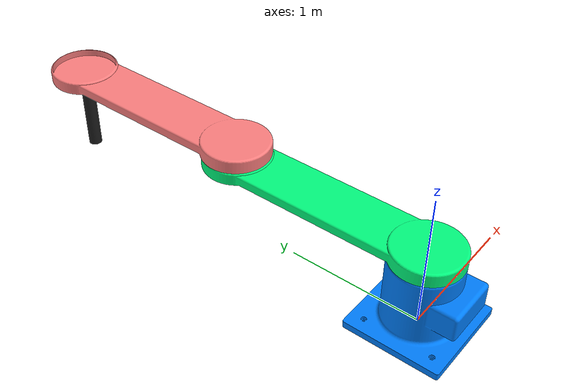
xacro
<?xml version="1.0"?>
<robot xmlns:xacro="http://www.ros.org/wiki/xacro" name="robot_arm">
    <xacro:include filename="$(find sketch_follower)/robot_description/urdf/helpers.xacro"/>

    <gazebo>
        <plugin filename="libgazebo_ros_control.so" name="gazebo_ros_control" />
    </gazebo>

    <link name="world" />

    <link name="base_link">
        <xacro:inertial m="1.2" x="0.75" y="0.75" z="0.8" oy="0" oz="0.4" />
        <visual>
            <origin xyz="0.0 0.0 0.0" rpy="0 0.0 0.0"/>
            <geometry>
                 <mesh filename="package://sketch_follower/robot_description/meshes/base_link.stl" scale="${sf} ${sf} ${sf}"/>
            </geometry>
            <material name="blue" />
        </visual>
        <collision>
            <origin xyz="0.0 0.0 0.0" rpy="0.0 0.0 0.0"/>
            <geometry>
                 <mesh filename="package://sketch_follower/robot_description/meshes/base_link.stl" scale="${sf} ${sf} ${sf}"/>
            </geometry>
        </collision>
    </link>

    <gazebo reference="base_link">
        <material>Gazebo/White</material>
    </gazebo>

    <joint name="base_joint" type="fixed">
        <origin xyz="0.0 0.0 0" rpy="0.0 0.0 0.0"/>
        <parent link="world"/>
        <child link="base_link"/>
    </joint>

    <xacro:link index="0" material="green" />

    <gazebo reference="link_0">
        <material>Gazebo/Black</material>
    </gazebo>

    <joint name="link_0_joint" type="continuous">
        <origin xyz="0 0.0 0.55" rpy="0.0 0.0 0.0"/>
        <parent link="base_link"/>
        <child link="link_0"/>
        <axis xyz="0.0 0.0 1.0"/>
        <dynamics damping="2.0" friction="2.0"/>
    </joint>

    <xacro:transmission name="link_0_joint" />

    <xacro:link index="1" material="red" />

    <gazebo reference="link_1">
        <material>Gazebo/White</material>
    </gazebo>

    <joint name="link_1_joint" type="continuous">
        <origin xyz="0 1.51 0.1" rpy="0.0 0.0 0.0"/>
        <parent link="link_0"/>
        <child link="link_1"/>
        <axis xyz="0.0 0.0 1.0"/>
        <dynamics damping="2.0" friction="2.0"/>
    </joint>

    <xacro:transmission name="link_1_joint" />

    <link name="sketch_follower">
        <visual>
            <origin xyz="0.0 0.0 0.0" rpy="0.0 0.0 0.0"/>
            <geometry>
                <cylinder radius="0.2" length="0.05"/>
                <material name="purple" />
            </geometry>
        </visual>
        <collision>
            <origin xyz="0.0 0.0 0.0" rpy="0.0 0.0 0.0"/>
            <geometry>
                <cylinder radius="0.2" length="0.05"/>
            </geometry>
        </collision>
        <inertial>
            <origin xyz="0.0 0.0 0.0" rpy="0.0 0.0 0.0"/>
            <mass value="0.2"/>
            <inertia    ixx="0.0020416667" ixy="0.0" ixz="0.0"
                        iyy="0.0020416667" iyz="0.0"
                        izz="0.004"/>
        </inertial>
    </link>

    <gazebo reference="sketch_follower">
        <material>Gazebo/Black</material>
    </gazebo>

    <joint name="sketch_follower_joint" type="continuous">
        <parent link="link_1"/>
        <child link="sketch_follower"/>
        <origin xyz="0.0 1.5 0" rpy="0.0 0.0 0.0"/>
        <axis xyz="0.0 0.0 1.0"/>
        <dynamics damping="3.0" friction="3.0" />
    </joint>

    <xacro:transmission name="sketch_follower_joint" />

    <link name="pen">
        <visual>
            <origin xyz="0.0 0.0 0.0" rpy="0.0 0.0 0.0"/>
            <geometry>
                <cylinder radius="0.05" length="0.6"/>
                <material name="purple" />
            </geometry>
        </visual>
        <collision>
            <geometry>
                <cylinder radius="0.05" length="0.6"/>
            </geometry>
        </collision>
    </link>

    <gazebo reference="pen">
        <material>Gazebo/Black</material>
    </gazebo>

    <joint name="pen_joint" type="fixed">
        <parent link="sketch_follower"/>
        <child link="pen"/>
        <origin xyz="0.0 0 -0.3" rpy="0.0 0.0 0.0"/>
    </joint>

</robot>

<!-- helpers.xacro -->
<robot xmlns:xacro="http://www.ros.org/wiki/xacro">

    <xacro:property name="sf" value="0.005"/>

    <material name="blue">
        <color rgba="0 0.5 1 1" />
    </material>
    <material name="green">
        <color rgba="0 1 0.5 1" />
    </material>
    <material name="red">
        <color rgba="1 0.5 0.5 1" />
    </material>
    <material name="purple">
        <color rgba="0.8 0 1 1" />
    </material>

    <xacro:macro name="link" params="index material">
        <link name="link_${index}">
            <xacro:inertial m="0.3" x="0.5" y="2" z="0.1" oy="0.75" oz="0.05" />
            <visual>
                <origin xyz="0 0.0 0.0" rpy="0.0 0.0 0.0"/>
                <geometry>
                    <mesh filename="package://sketch_follower/robot_description/meshes/link.stl" scale="${sf} ${sf} ${sf}"/>
                </geometry>
                <material name="${material}" />
            </visual>
            <collision>
                <origin xyz="0.0 0.0 0.0" rpy="0.0 0.0 0.0"/>
                <geometry>
                    <mesh filename="package://sketch_follower/robot_description/meshes/link.stl" scale="${sf} ${sf} ${sf}"/>
                </geometry>
            </collision>
        </link>
    </xacro:macro>

    <xacro:macro name="inertial" params="m x y z oy oz" >
        <inertial>
            <origin xyz="0 ${oy} ${oz}" rpy="0.0 0.0 0.0"/>
            <mass value="${m}"/>
            <inertia    ixx="${(1/12) * m * (z*z + y*y)}" ixy="0.0" ixz="0.0"
                        iyy="${(1/12) * m * (x*x + z*z)}" iyz="0.0"
                        izz="${(1/12) * m * (y*y + x*x)}"/>
        </inertial>
    </xacro:macro>

    <xacro:macro name="transmission" params="name">
        <transmission name='${name}_transmission'>
            <type>transmission_interface/SimpleTransmission</type>
                <joint name='${name}'>
                    <hardwareInterface>hardware_interface/EffortJointInterface</hardwareInterface>
                </joint>
            <actuator name='${name}_actuator'>
                <hardwareInterface>hardware_interface/EffortJointInterface</hardwareInterface>
                <mechanicalReduction>1</mechanicalReduction>
            </actuator>
        </transmission>
    </xacro:macro>

</robot>
